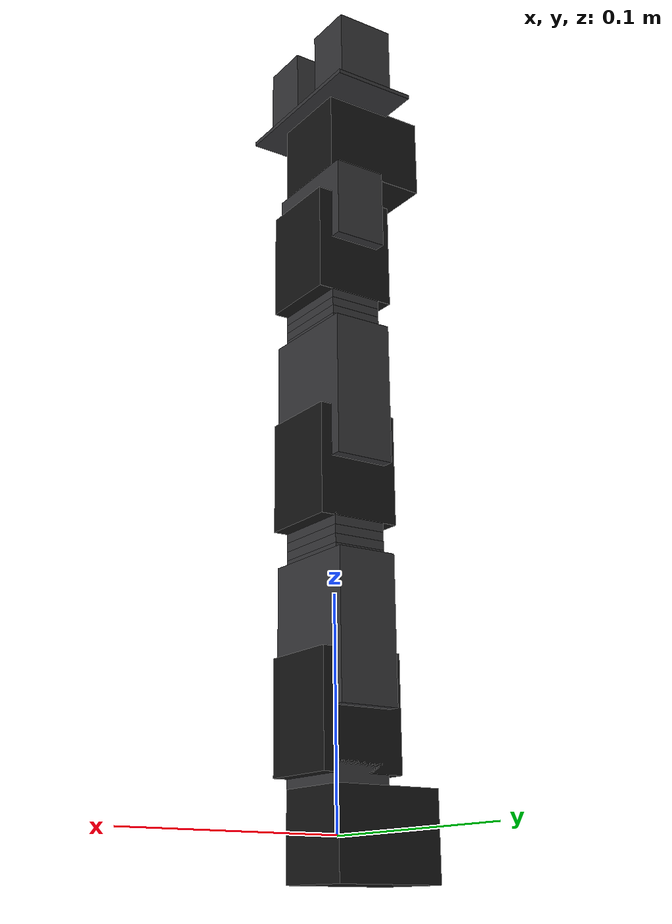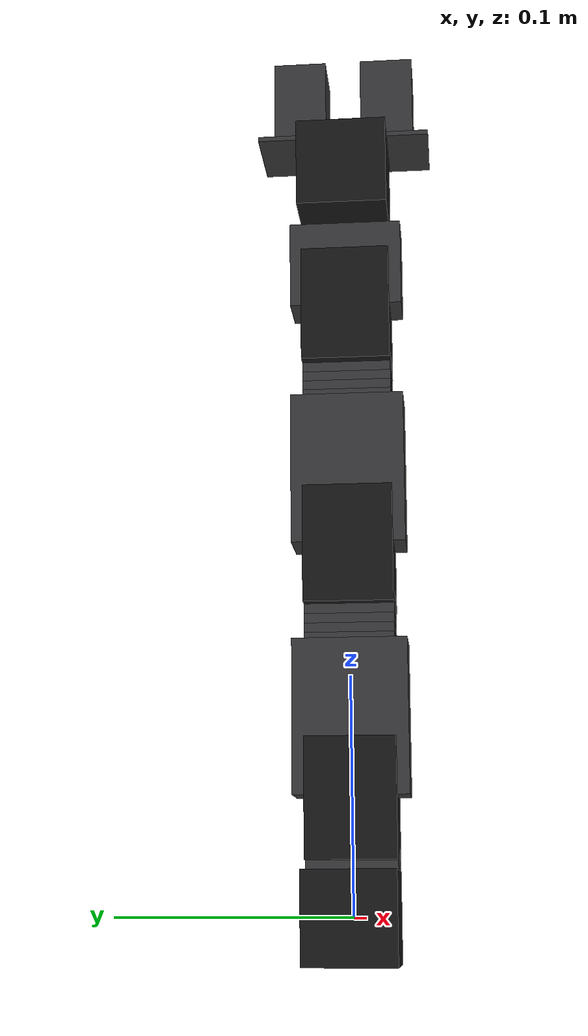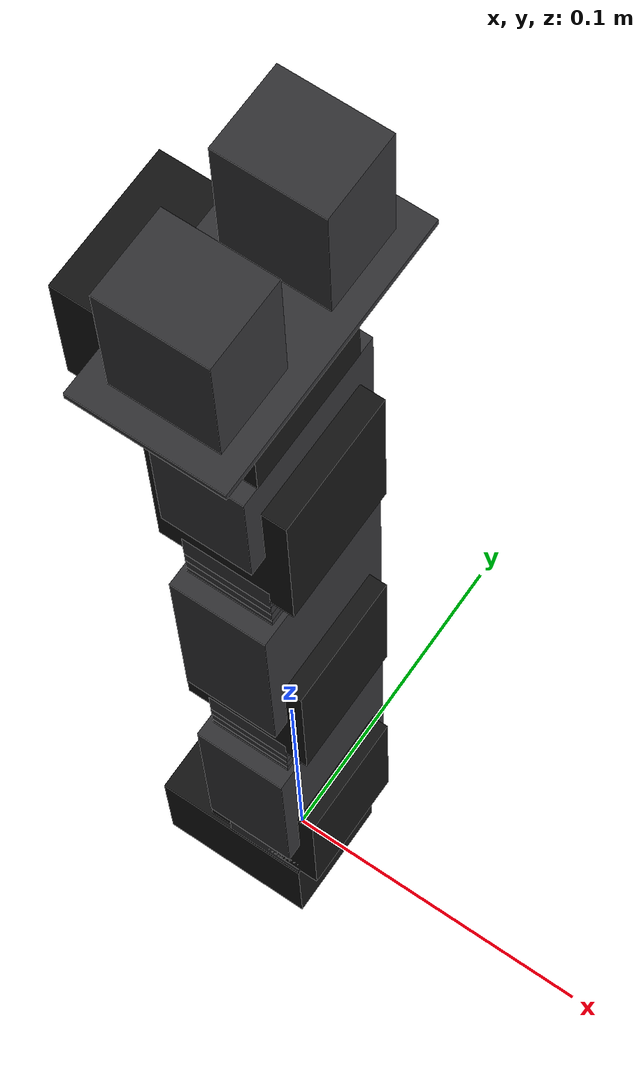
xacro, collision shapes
<?xml version="1.0"?>
<robot name="pincher_arm" xmlns:xacro="http://ros.org/wiki/xacro">

  <xacro:include filename="$(find phantomx_pincher_arm_description)/urdf/pincher_arm.xacro"/>

  <link name="base_link"/>

  <xacro:pincher_arm parent="base_link">
    <origin xyz="0.0 0.0 0.0"/>
  </xacro:pincher_arm>

</robot>

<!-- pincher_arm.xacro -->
<!-- PhantomX Pincher arm description -->
<robot xmlns:xacro="http://ros.org/wiki/xacro">
  <xacro:include filename="$(find phantomx_pincher_arm_description)/urdf/arm_hardware.xacro"/>

  <material name="White">
    <color rgba="0.87 0.90 0.87 1.0"/>
  </material>
  <material name="Black">
    <color rgba="0.08 0.08 0.08 1.0"/>
  </material>
  <material name="Gray">
    <color rgba="0.2 0.2 0.21 1.0"/>
  </material>
  <material name="Green">
    <color rgba="0.22 0.32 0.14 1.0"/>
  </material>

  <xacro:macro name="pincher_arm" params="
      parent:=base_link
      color:=Gray
      joints_vlimit:=1.571
      pan_llimit:=-2.617
      pan_ulimit:=2.617
      shoulder_llimit:=-2.2
      shoulder_ulimit:=2.16
      elbow_llimit:=-2.42
      elbow_ulimit:=2.38
      wrist_llimit:=-1.72
      wrist_ulimit:=1.68
      *origin">

    <link name="arm_base_link"/>
    <joint name="arm_base_joint" type="fixed">
      <xacro:insert_block name="origin"/>
      <parent link="${parent}"/>
      <child link="arm_base_link"/>
    </joint>

    <!-- shoulder pan joint -->
    <xacro:dynamixel_AX12_fixed parent="arm_base_link" name="arm_shoulder_pan_servo">
      <origin xyz="0 0 0" rpy="${pi/2} 0 ${pi/2}"/>
    </xacro:dynamixel_AX12_fixed>
    <xacro:bioloid_F3_revolute parent="arm_shoulder_pan_servo_link" name="arm_shoulder_pan" color="${color}"
                               vlimit="${joints_vlimit}" llimit="${pan_llimit}" ulimit="${pan_ulimit}">
      <origin xyz="0 ${AX12_WIDTH/2} 0" rpy="${-pi/2} ${pi/2} ${pi}"/>
    </xacro:bioloid_F3_revolute>

    <!-- shoulder lift joint -->
    <xacro:dynamixel_AX12_fixed parent="arm_shoulder_pan_link" name="arm_shoulder_lift_servo">
      <origin xyz="0 0 ${-AX12_HEIGHT-F10_HEIGHT+0.001}" rpy="0 ${pi} 0"/>
    </xacro:dynamixel_AX12_fixed>
    <xacro:bioloid_F4_revolute parent="arm_shoulder_lift_servo_link" name="arm_shoulder_lift" color="${color}"
                               vlimit="${joints_vlimit}" llimit="${shoulder_llimit}" ulimit="${shoulder_ulimit}">
      <origin xyz="0 0 0" rpy="0 0 0"/>
    </xacro:bioloid_F4_revolute>
    <xacro:bioloid_F10_fixed parent="arm_shoulder_lift_link" name="arm_shoulder_F10_0" color="${color}">
      <origin xyz="0 0 ${F4_HEIGHT+F10_HEIGHT/2}" rpy="0 0 0"/>
    </xacro:bioloid_F10_fixed>
    <xacro:bioloid_F10_fixed parent="arm_shoulder_F10_0_link" name="arm_shoulder_F10_1" color="${color}">
      <origin xyz="0 0 ${F10_HEIGHT}" rpy="0 0 0"/>
    </xacro:bioloid_F10_fixed>
    <xacro:bioloid_F10_fixed parent="arm_shoulder_F10_1_link" name="arm_shoulder_F10_2" color="${color}">
      <origin xyz="0 0 ${F10_HEIGHT}" rpy="0 0 0"/>
    </xacro:bioloid_F10_fixed>
    <xacro:bioloid_F3_fixed parent="arm_shoulder_F10_2_link" name="arm_shoulder_F3_0" color="${color}">
      <origin xyz="0 0 ${F10_HEIGHT/2}" rpy="0 ${pi} 0"/>
    </xacro:bioloid_F3_fixed>

    <!-- elbow joint -->
    <xacro:dynamixel_AX12_fixed parent="arm_shoulder_F3_0_link" name="arm_elbow_flex_servo">
      <origin xyz="0 0 ${-AX12_HEIGHT-F10_HEIGHT+0.001}" rpy="0 ${pi} 0"/>
    </xacro:dynamixel_AX12_fixed>
    <xacro:bioloid_F4_revolute parent="arm_elbow_flex_servo_link" name="arm_elbow_flex" color="${color}"
                               vlimit="${joints_vlimit}" llimit="${elbow_llimit}" ulimit="${elbow_ulimit}">
      <origin xyz="0 0 0" rpy="0 0 0"/>
    </xacro:bioloid_F4_revolute>
    <xacro:bioloid_F10_fixed parent="arm_elbow_flex_link" name="arm_elbow_F10_0" color="${color}">
      <origin xyz="0 0 ${F4_HEIGHT+F10_HEIGHT/2}" rpy="0 0 0"/>
    </xacro:bioloid_F10_fixed>
    <xacro:bioloid_F10_fixed parent="arm_elbow_F10_0_link" name="arm_elbow_F10_1" color="${color}">
      <origin xyz="0 0 ${F10_HEIGHT}" rpy="0 0 0"/>
    </xacro:bioloid_F10_fixed>
    <xacro:bioloid_F10_fixed parent="arm_elbow_F10_1_link" name="arm_elbow_F10_2" color="${color}">
      <origin xyz="0 0 ${F10_HEIGHT}" rpy="0 0 0"/>
    </xacro:bioloid_F10_fixed>
    <xacro:bioloid_F3_fixed parent="arm_elbow_F10_2_link" name="arm_elbow_F3_0" color="${color}">
      <origin xyz="0 0 ${F10_HEIGHT/2}" rpy="0 ${pi} 0"/>
    </xacro:bioloid_F3_fixed>

    <!-- wrist joint -->
    <xacro:dynamixel_AX12_fixed parent="arm_elbow_F3_0_link" name="arm_wrist_flex_servo">
      <origin xyz="0 0 ${-AX12_HEIGHT-F10_HEIGHT+0.001}" rpy="0 ${pi} 0"/>
    </xacro:dynamixel_AX12_fixed>

    <xacro:bioloid_F2_revolute parent="arm_wrist_flex_servo_link" name="arm_wrist_flex" color="${color}"
                               vlimit="${joints_vlimit}" llimit="${wrist_llimit}" ulimit="${wrist_ulimit}">
      <origin xyz="0 0 0" rpy="0 0 0"/>
    </xacro:bioloid_F2_revolute>

    <xacro:bioloid_F3_fixed parent="arm_wrist_flex_link" name="arm_wrist_F3_0" color="${color}">
      <origin xyz="0 0 ${F2_HEIGHT}" rpy="0 ${pi} ${-pi}"/>
    </xacro:bioloid_F3_fixed>

    <!-- gripper joint -->
    <xacro:dynamixel_AX12_fixed parent="arm_wrist_F3_0_link" name="gripper_servo" >
      <origin xyz="0 0 ${-AX12_WIDTH/2}" rpy="${pi/2} ${pi} ${pi/2}"/>
    </xacro:dynamixel_AX12_fixed>

    <xacro:gripper_finger_base parent="gripper_servo_link" name="gripper_finger_base" color="${color}">
      <origin xyz="0  ${AX12_WIDTH/2} 0" rpy="${pi} 0 ${pi/2}"/>
    </xacro:gripper_finger_base>

    <!-- Finger 1 -->
    <joint name="gripper_joint" type="prismatic">
      <origin xyz="0.019 0 0" rpy="0 0 0"/>
      <axis xyz="0 1 0"/>
      <limit effort="30" velocity="0.05" lower="0.001" upper="0.0175"/>
      <parent link="gripper_finger_base_link"/>
      <child link="gripper_active_link"/>
    </joint>

    <xacro:pincher_gripper name="gripper_active" color="${color}" >
      <origin xyz="0 0.01 0" rpy="${pi/2} 0 ${pi/2}"/>
    </xacro:pincher_gripper>

    <!-- Finger 2 -->
    <joint name="gripper2_joint" type="prismatic">
      <origin xyz="0.019 0 0" rpy="${pi} 0 0"/>
      <axis xyz="0 1 0"/>
      <limit effort="30" velocity="0.05" lower="0.001" upper="0.0175"/>
      <parent link="gripper_finger_base_link"/>
      <child link="gripper_active2_link"/>
      <mimic joint="gripper_joint"/>
    </joint>

    <xacro:pincher_gripper name="gripper_active2" color="${color}" >
      <origin xyz="0 0.01 0" rpy="${pi/2} 0 ${pi/2}"/>
    </xacro:pincher_gripper>

    <!-- fake gripper joint -->
    <link name="gripper_fake_link"/>
    <joint name="gripper_fake_joint" type="revolute">
      <origin xyz="0 0 0.085" rpy="0 -1.57 0"/>
      <parent link="arm_wrist_flex_link"/>
      <child link="gripper_fake_link"/>
      <limit effort="30" velocity="1" lower="-3.14" upper="3.14"/>
      <axis xyz="1 0 0"/>
    </joint>

  </xacro:macro>

</robot>

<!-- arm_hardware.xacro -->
<!-- Basic URDF components for PhantomX Pincher Arm-->
<robot xmlns:xacro="http://ros.org/wiki/xacro">

  <xacro:property name="M_SCALE" value="0.001"/>
  <xacro:property name="F2_HEIGHT" value="0.0265"/>
  <xacro:property name="F3_HEIGHT" value="0.009"/>
  <xacro:property name="F4_HEIGHT" value="0.0525"/>
  <xacro:property name="F10_HEIGHT" value="0.004"/>
  <xacro:property name="AX12_HEIGHT" value="0.0385"/>
  <xacro:property name="AX12_WIDTH" value="0.038"/>
  <xacro:property name="AX12_LENGTH" value="0.050"/>
  <xacro:property name="AX12_RANGE" value="5.236"/>  <!-- 300 degrees -->

  <!-- Calculates the inertial properties of a bounding box. From
       https://en.wikipedia.org/wiki/List_of_moments_of_inertia#List_of_3D_inertia_tensors-->
  <xacro:macro name="box_inertia" params="length width height mass x=0 y=0 z=0">
    <inertial>
      <mass value="${mass}"/>
      <origin xyz="${x} ${y} ${z}"/>
      <inertia ixx="${mass/12*(width**2+height**2)}" ixy="0" ixz="0"
               iyy="${mass/12*(length**2+height**2)}" iyz="0"
               izz="${mass/12*(width**2+length**2)}"/>

    </inertial>
  </xacro:macro>
  <xacro:macro name="arm_mount" params="parent name color *origin">
    <joint name="${name}_joint" type="fixed">
      <xacro:insert_block name="origin"/>
      <parent link="${parent}"/>
      <child link="${name}_link"/>
    </joint>

    <link name="${name}_link">
      <xacro:box_inertia length="0.074" width="0.074" height="0.004" mass="0.018"/>

      <visual>
        <origin xyz="-0.028 -0.0493 0.014" rpy="0.0 0.0 -${pi/2}"/>
        <geometry>
          <mesh filename="package://phantomx_pincher_arm_description/meshes/mount.stl" scale="${M_SCALE} ${M_SCALE} ${M_SCALE}"/>
        </geometry>
        <material name="${color}"/>
      </visual>

      <collision>
        <origin xyz="-0.01 0.0 0.0165" rpy="0.0 0.0 0.0"/>
        <geometry>
          <box size="0.074 0.074 0.004"/>
        </geometry>
      </collision>
    </link>

    <gazebo reference="${name}_link">
      <material>Gazebo/${color}</material>
      <selfCollide>true</selfCollide>
      <gravity>true</gravity>
    </gazebo>
  </xacro:macro>

  <xacro:macro name="dynamixel_AX12_fixed" params="parent name *origin">
    <joint name="${name}_joint" type="fixed">
      <xacro:insert_block name="origin"/>
      <parent link="${parent}"/>
      <child link="${name}_link"/>
    </joint>

    <link name="${name}_link">
      <xacro:box_inertia length="${AX12_HEIGHT}" width="${AX12_WIDTH}" height="${AX12_LENGTH}" mass="0.055" z="-0.01241"/>

      <visual>
        <origin xyz="0 0 0" rpy="0 0 0"/>
        <geometry>
          <mesh filename="package://phantomx_pincher_arm_description/meshes/ax12_box.stl" scale="${M_SCALE} ${M_SCALE} ${M_SCALE}"/>
        </geometry>
        <material name="Black"/>
      </visual>

      <collision>
        <origin xyz="0.0 0.0 -0.01241" rpy="0 0 0"/>
        <geometry>
          <box size="${AX12_HEIGHT} ${AX12_WIDTH} ${AX12_LENGTH}"/>
        </geometry>
      </collision>
    </link>
    <gazebo reference="${name}_link">
      <material>Gazebo/Black</material>
      <selfCollide>true</selfCollide>
      <gravity>true</gravity>
    </gazebo>
  </xacro:macro>

  <xacro:macro name="bioloid_F10_fixed" params="parent name color *origin">
    <joint name="${name}_joint" type="fixed">
      <xacro:insert_block name="origin"/>
      <parent link="${parent}"/>
      <child link="${name}_link"/>
    </joint>

    <link name="${name}_link">
      <xacro:box_inertia length="0.025" width="0.038" height="0.004" mass="0.004"/>

      <visual>
        <origin xyz="0 0 0" rpy="0 0 0"/>
        <geometry>
          <mesh filename="package://phantomx_pincher_arm_description/meshes/F10.stl" scale="${M_SCALE} ${M_SCALE} ${M_SCALE}"/>
        </geometry>
        <material name="${color}"/>
      </visual>

      <collision>
        <origin xyz="0.0 0.0 0.0" rpy="0 0 0"/>
        <geometry>
          <box size="0.025 0.038 0.004"/>
        </geometry>
      </collision>
    </link>

    <gazebo reference="${name}_link">
      <material>Gazebo/${color}</material>
      <selfCollide>true</selfCollide>
      <gravity>true</gravity>
    </gazebo>
  </xacro:macro>

  <xacro:macro name="bioloid_F3_fixed" params="parent name color *origin">
    <joint name="${name}_joint" type="fixed">
      <xacro:insert_block name="origin"/>
      <parent link="${parent}"/>
      <child link="${name}_link"/>
    </joint>

    <link name="${name}_link">
      <xacro:box_inertia length="0.025" width="0.038" height="0.009" mass="0.005"/>

      <visual>
        <origin xyz="0 0 0" rpy="0 0 0"/>
        <geometry>
          <mesh filename="package://phantomx_pincher_arm_description/meshes/F3.stl" scale="${M_SCALE} ${M_SCALE} ${M_SCALE}"/>
        </geometry>
        <material name="${color}"/>
      </visual>

      <collision>
        <origin xyz="0.0 0.0 -0.0045" rpy="0 0 0"/>
        <geometry>
          <box size="0.025 0.038 0.009"/>
        </geometry>
      </collision>
    </link>

    <gazebo reference="${name}_link">
      <material>Gazebo/${color}</material>
      <selfCollide>true</selfCollide>
      <gravity>true</gravity>
    </gazebo>
  </xacro:macro>

  <xacro:macro name="bioloid_F3_revolute" params="parent name color llimit ulimit vlimit *origin">
    <joint name="${name}_joint" type="revolute">
      <xacro:insert_block name="origin"/>
      <axis xyz="0 0 -1"/>
      <limit effort="30" velocity="${vlimit}" lower="${llimit}" upper="${ulimit}"/>
      <dynamics friction="0.13"/>
      <parent link="${parent}"/>
      <child link="${name}_link"/>
    </joint>

    <link name="${name}_link">
      <xacro:box_inertia length="0.025" width="0.038" height="0.009" mass="0.008"/>

      <visual>
        <origin xyz="0 0 0" rpy="0 0 0"/>
        <geometry>
          <mesh filename="package://phantomx_pincher_arm_description/meshes/F3.stl" scale="${M_SCALE} ${M_SCALE} ${M_SCALE}"/>
        </geometry>
        <material name="${color}"/>
      </visual>

      <collision>
        <origin xyz="0.0 0.0 -0.0045" rpy="0 0 0"/>
        <geometry>
          <box size="0.025 0.038 0.009"/>
        </geometry>
      </collision>
    </link>

    <gazebo reference="${name}_link">
      <material>Gazebo/${color}</material>
      <selfCollide>true</selfCollide>
      <gravity>true</gravity>
    </gazebo>
  </xacro:macro>

  <xacro:macro name="bioloid_F2_revolute" params="parent name color llimit ulimit vlimit *origin">
    <joint name="${name}_joint" type="revolute">
      <xacro:insert_block name="origin"/>
      <axis xyz="0 1 0"/>
      <limit effort="30" velocity="${vlimit}" lower="${llimit}" upper="${ulimit}"/>
      <dynamics friction="0.13"/>
      <parent link="${parent}"/>
      <child link="${name}_link"/>
    </joint>

    <link name="${name}_link">
      <xacro:box_inertia length="0.025" width="0.0485" height="0.0375" mass="0.010"/>

      <visual>
        <origin xyz="0 0 0" rpy="0 0 0"/>
        <geometry>
          <mesh filename="package://phantomx_pincher_arm_description/meshes/F2.stl" scale="${M_SCALE} ${M_SCALE} ${M_SCALE}"/>
        </geometry>
        <material name="${color}"/>
      </visual>

      <collision>
        <origin xyz="0.0 0.0 0.00775" rpy="0 0 0"/>
        <geometry>
          <box size="0.025 0.0485 0.0375"/>
        </geometry>
      </collision>
    </link>

    <gazebo reference="${name}_link">
      <material>Gazebo/${color}</material>
      <selfCollide>true</selfCollide>
      <gravity>true</gravity>
    </gazebo>
  </xacro:macro>

  <xacro:macro name="bioloid_F4_revolute" params="parent name color llimit ulimit vlimit *origin">
    <joint name="${name}_joint" type="revolute">
      <xacro:insert_block name="origin"/>
      <axis xyz="0 1 0"/>
      <limit effort="30" velocity="${vlimit}" lower="${llimit}" upper="${ulimit}"/>
      <dynamics friction="0.13"/>
      <parent link="${parent}"/>
      <child link="${name}_link"/>
    </joint>

    <link name="${name}_link">
      <xacro:box_inertia length="0.028" width="0.0485" height="0.065" mass="0.016"/>

      <visual>
        <origin xyz="0 0 0" rpy="0 0 0"/>
        <geometry>
          <mesh filename="package://phantomx_pincher_arm_description/meshes/F4.stl" scale="${M_SCALE} ${M_SCALE} ${M_SCALE}"/>
        </geometry>
        <material name="${color}"/>
      </visual>

      <collision>
        <origin xyz="0.0 0.0 0.0215" rpy="0 0 0"/>
        <geometry>
          <box size="0.028 0.0485 0.065"/>
        </geometry>
      </collision>
    </link>

    <gazebo reference="${name}_link">
      <material>Gazebo/${color}</material>
      <selfCollide>true</selfCollide>
      <gravity>true</gravity>
    </gazebo>
  </xacro:macro>

  <xacro:macro name="gripper_finger_base" params="parent name color *origin">
    <joint name="${name}_joint" type="fixed">
      <xacro:insert_block name="origin"/>
      <parent link="${parent}"/>
      <child link="${name}_link"/>
    </joint>

    <link name="${name}_link">
      <xacro:box_inertia length="0.002" width="0.075" height="0.040" mass="0.00001"/>
      <visual>
        <origin xyz="0 0 0" rpy="0 0 0"/>
        <geometry>
          <box size="0.002 0.075 0.040"/>
        </geometry>
        <material name="${color}"/>
      </visual>

      <collision>
        <geometry>
          <box size="0.002 0.075 0.040"/>
        </geometry>
      </collision>
    </link >

    <gazebo reference="${name}_link">
      <material>Gazebo/${color}</material>
      <selfCollide>true</selfCollide>
      <gravity>true</gravity>
    </gazebo>
  </xacro:macro>

  <xacro:macro name="pincher_gripper" params="name color *origin">
    <link name="${name}_link">
      <xacro:box_inertia length="0.036" width="0.028" height="0.004" mass="0.00001"/>
      <visual>
        <xacro:insert_block name="origin"/>
        <geometry>
          <mesh filename="package://phantomx_pincher_arm_description/meshes/pincher_finger.stl" scale=".01 .01 .01"/>
        </geometry>
        <material name="${color}"/>
      </visual>
      <collision>
        <xacro:insert_block name="origin"/>
        <geometry>
          <box size="0.023 0.028 0.038"/>
        </geometry>
      </collision>
    </link>

    <gazebo reference="${name}_link">
      <material>Gazebo/${color}</material>
      <selfCollide>true</selfCollide>
      <gravity>true</gravity>
    </gazebo>
  </xacro:macro>
</robot>
